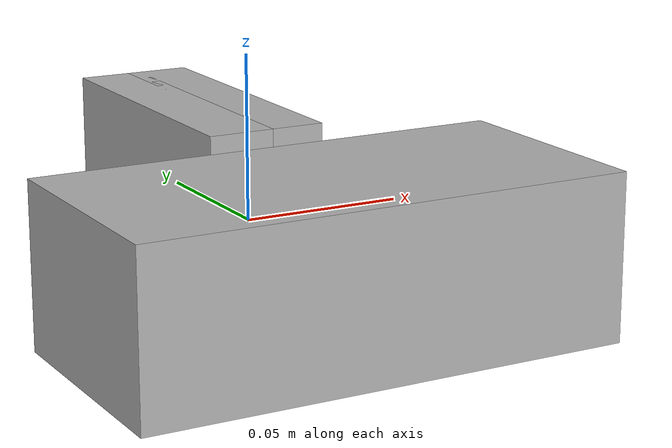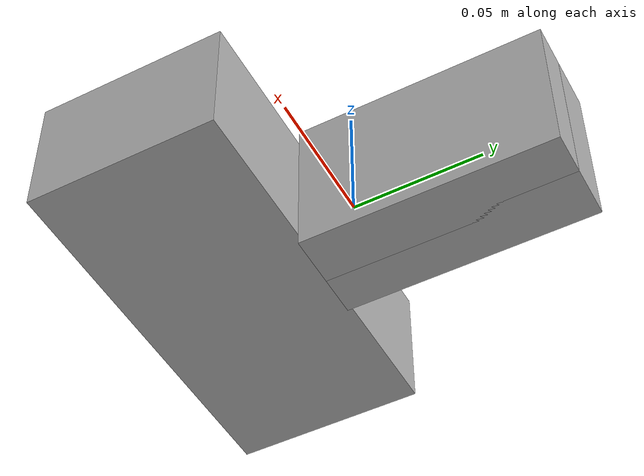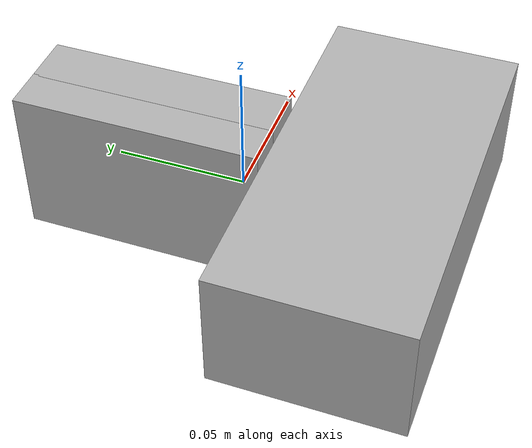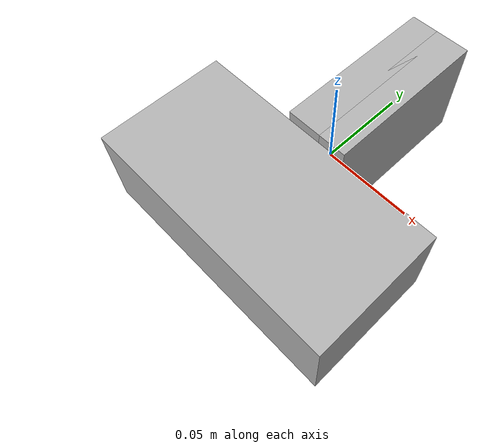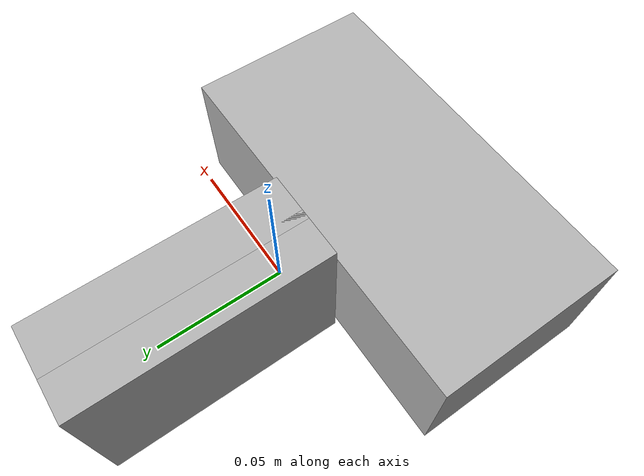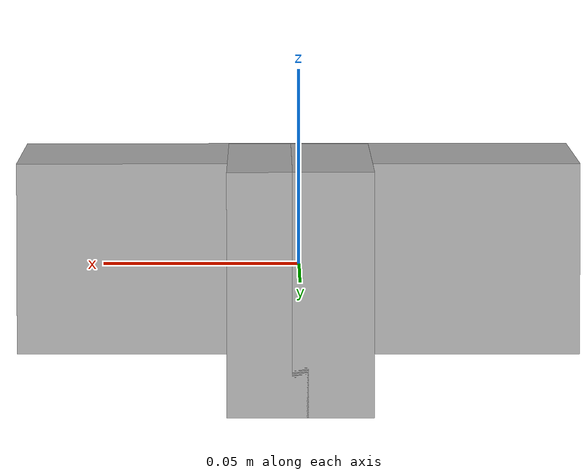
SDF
<?xml version="1.0"?>
<sdf version="1.7">
  <model name="Schunk_Gripper">
    <link name="body">
      <pose>0 -0.049133 0 0 0 0</pose>
      <inertial>
        <mass>0.988882</mass>
        <inertia>
          <ixx>0.162992</ixx>
          <ixy>0</ixy>
          <ixz>0</ixz>
          <iyy>0.162992</iyy>
          <iyz>0</iyz>
          <izz>0.164814</izz>
        </inertia>
      </inertial>
      <visual name="visual">
        <geometry>
          <box>
            <size>0.146 0.0725 0.049521</size>
          </box>
        </geometry>
        <material>
          <ambient>0.3 0.3 0.3 1</ambient>
          <diffuse>0.7 0.7 0.7 1</diffuse>
          <specular>0.01 0.01 0.01 1</specular>
          <emissive>0 0 0 1</emissive>
        </material>
      </visual>
      <collision name="collision">
        <geometry>
          <box>
            <size>0.146 0.075 0.049521</size>
          </box>
        </geometry>
        <drake:proximity_properties>
          <drake:mu_dynamic>1.5</drake:mu_dynamic>
          <drake:mu_static>1.5</drake:mu_static>
          <drake:mesh_resolution_hint>1</drake:mesh_resolution_hint>
          <drake:hydroelastic_modulus>1e6</drake:hydroelastic_modulus>
          <drake:hunt_crossley_dissipation>5</drake:hunt_crossley_dissipation>
          <drake:compliant_hydroelastic/>
        </drake:proximity_properties>
      </collision>
    </link>
    <frame name="body_frame">
      <pose relative_to="body"/>
    </frame>
    <link name="left_finger">
      <pose>-0.008 0.035 0 0 0 0</pose>
      <inertial>
        <mass>0.05</mass>
        <inertia>
          <ixx>0.16</ixx>
          <ixy>0</ixy>
          <ixz>0</ixz>
          <iyy>0.16</iyy>
          <iyz>0</iyz>
          <izz>0.16</izz>
        </inertia>
      </inertial>
      <visual name="visual">
        <geometry>
          <box>
            <size>0.020 0.095 0.06</size>
          </box>
        </geometry>
        <material>
          <ambient>0.3 0.3 0.3 1</ambient>
          <diffuse>0.7 0.7 0.7 1</diffuse>
          <specular>0.01 0.01 0.01 1</specular>
          <emissive>0 0 0 1</emissive>
        </material>
      </visual>
      <collision name="collision">
        <geometry>
          <box>
            <size>0.020 0.095 0.06</size>
          </box>
        </geometry>
        <drake:proximity_properties>
          <drake:mu_dynamic>1.5</drake:mu_dynamic>
          <drake:mu_static>1.5</drake:mu_static>
          <drake:mesh_resolution_hint>1</drake:mesh_resolution_hint>
          <drake:hydroelastic_modulus>1e6</drake:hydroelastic_modulus>
          <drake:hunt_crossley_dissipation>5</drake:hunt_crossley_dissipation>
          <drake:compliant_hydroelastic/>
        </drake:proximity_properties>
      </collision>
    </link>
    <link name="right_finger">
      <pose>0.008 0.035 0 0 0 0</pose>
      <inertial>
        <mass>0.05</mass>
        <inertia>
          <ixx>0.16</ixx>
          <ixy>0</ixy>
          <ixz>0</ixz>
          <iyy>0.16</iyy>
          <iyz>0</iyz>
          <izz>0.16</izz>
        </inertia>
      </inertial>
      <visual name="visual">
        <geometry>
          <box>
            <size>0.020 0.095 0.06</size>
          </box>
        </geometry>
        <material>
          <ambient>0.3 0.3 0.3 1</ambient>
          <diffuse>0.7 0.7 0.7 1</diffuse>
          <specular>0.01 0.01 0.01 1</specular>
          <emissive>0 0 0 1</emissive>
        </material>
      </visual>
      <collision name="collision">
        <geometry>
          <box>
            <size>0.020 0.095 0.06</size>
          </box>
        </geometry>
        <drake:proximity_properties>
          <drake:mu_dynamic>1.5</drake:mu_dynamic>
          <drake:mu_static>1.5</drake:mu_static>
          <drake:mesh_resolution_hint>1</drake:mesh_resolution_hint>
          <drake:hydroelastic_modulus>1e6</drake:hydroelastic_modulus>
          <drake:hunt_crossley_dissipation>5</drake:hunt_crossley_dissipation>
          <drake:compliant_hydroelastic/>
        </drake:proximity_properties>
      </collision>
    </link>
    <joint name="left_finger_sliding_joint" type="prismatic">
      <parent>body</parent>
      <child>left_finger</child>
      <axis>
        <xyz>1 0 0</xyz>
        <!-- Drake attaches an actuator to all and only joints with a nonzero
             effort limit. -->
        <limit>
          <lower>-0.055</lower>
          <upper>0</upper>
          <effort>80</effort>
          <stiffness>15000</stiffness>
        </limit>
        <dynamics>
          <spring_reference>0</spring_reference>
          <spring_stiffness>0</spring_stiffness>
          <damping>0</damping>
          <friction>0</friction>
        </dynamics>
      </axis>
    </joint>
    <joint name="right_finger_sliding_joint" type="prismatic">
      <parent>body</parent>
      <child>right_finger</child>
      <axis>
        <xyz>1 0 0</xyz>
        <!-- Drake attaches an actuator to all and only joints with a nonzero
             effort limit. -->
        <limit>
          <lower>0</lower>
          <upper>0.055</upper>
          <effort>80</effort>
          <stiffness>15000</stiffness>
        </limit>
        <dynamics>
          <spring_reference>0</spring_reference>
          <spring_stiffness>0</spring_stiffness>
          <damping>0</damping>
          <friction>0</friction>
        </dynamics>
      </axis>
    </joint>
    <static>0</static>
  </model>
</sdf>
